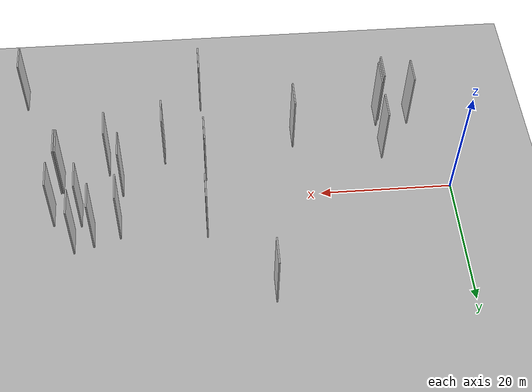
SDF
<?xml version="1.0" encoding="utf-8"?>

<sdf version="1.6">

   <world name="default">

      <gui fullscreen="0">

         <camera name="user_camera">

            <pose>-15 0 4.57585 0 0 0</pose>

            <view_controller>orbit</view_controller>

         </camera>

      </gui>

      <scene>

         <sky>

           <clouds>

             <speed>12</speed>

           </clouds>

         </sky>

         <ambient>0.4 0.4 0.4 1</ambient>

         <background>0.7 0.7 0.7 1</background>

         <shadows>1</shadows>

      </scene>

      <gravity>0 0 -9.8066</gravity>

      <magnetic_field>6e-06 2.3e-05 -4.2e-05</magnetic_field>

      <physics default="0" name="default_physics" type="ode">

         <ode>

            <solver>

               <type>quick</type>

               <iters>10</iters>

               <sor>1.0</sor>

               <use_dynamic_moi_rescaling>0</use_dynamic_moi_rescaling>

            </solver>

            <constraints>

               <cfm>0</cfm>

               <erp>0.2</erp>

               <contact_max_correcting_vel>100</contact_max_correcting_vel>

               <contact_surface_layer>0.001</contact_surface_layer>

            </constraints>

         </ode>

         <max_step_size>0.004</max_step_size>

         <real_time_factor>1</real_time_factor>

         <real_time_update_rate>250</real_time_update_rate>

      </physics>

      <light name="sun" type="directional">

         <cast_shadows>1</cast_shadows>

         <pose>0 0 10 0 0 0</pose>

         <diffuse>0.8 0.8 0.8 1</diffuse>

         <specular>0.2 0.2 0.2 1</specular>

         <attenuation>

            <range>1000</range>

            <constant>0.9</constant>

            <linear>0.01</linear>

            <quadratic>0.001</quadratic>

         </attenuation>

         <direction>-0.5 0.1 -0.9</direction>

      </light>

      <include>

         <name>ground_plane_1</name>

         <uri>model://HANNAS_ground_plane</uri>

         <pose>0 0 0  0 0 0</pose>

      </include>

      <include>

         <name>ground_plane_2</name>

         <uri>model://HANNAS_ground_plane</uri>

         <pose>100 0 0  0 0 0</pose>

      </include>

      <model name="HANNAS_wall_1">

         <static>1</static>

         <pose frame="">56.7683 9.6143 5.0 0.000000 0.000000 1.570796</pose>

         <link name="link">

            <pose frame="">0 0 5.00 0 0 0</pose>

            <collision name="collision">

               <geometry>

                  <box>

                     <size>4.00 0.2 10.00</size>

                  </box>

               </geometry>

               <max_contacts>10</max_contacts>

               <surface>

                  <contact>

                     <ode/>

                  </contact>

                  <bounce/>

                  <friction>

                     <torsional>

                        <ode/>

                     </torsional>

                     <ode/>

                  </friction>

               </surface>

            </collision>

            <visual name="visual">

               <cast_shadows>0</cast_shadows>

               <geometry>

                  <box>

                     <size>4.00 0.2 10.00</size>

                  </box>

               </geometry>

               <material>

                  <script>

                     <uri>model://HANNAS_wall/materials/scripts</uri>

                     <uri>model://HANNAS_wall/materials/textures</uri>

                     <name>vrc/HANNAS_wall</name>

                  </script>

               </material>

            </visual>

            <self_collide>0</self_collide>

            <enable_wind>0</enable_wind>

            <kinematic>0</kinematic>

         </link>

      </model>

      <model name="HANNAS_wall_2">

         <static>1</static>

         <pose frame="">28.8676 19.4419 5.0 0.000000 0.000000 1.570796</pose>

         <link name="link">

            <pose frame="">0 0 5.00 0 0 0</pose>

            <collision name="collision">

               <geometry>

                  <box>

                     <size>4.00 0.2 10.00</size>

                  </box>

               </geometry>

               <max_contacts>10</max_contacts>

               <surface>

                  <contact>

                     <ode/>

                  </contact>

                  <bounce/>

                  <friction>

                     <torsional>

                        <ode/>

                     </torsional>

                     <ode/>

                  </friction>

               </surface>

            </collision>

            <visual name="visual">

               <cast_shadows>0</cast_shadows>

               <geometry>

                  <box>

                     <size>4.00 0.2 10.00</size>

                  </box>

               </geometry>

               <material>

                  <script>

                     <uri>model://HANNAS_wall/materials/scripts</uri>

                     <uri>model://HANNAS_wall/materials/textures</uri>

                     <name>vrc/HANNAS_wall</name>

                  </script>

               </material>

            </visual>

            <self_collide>0</self_collide>

            <enable_wind>0</enable_wind>

            <kinematic>0</kinematic>

         </link>

      </model>

      <model name="HANNAS_wall_3">

         <static>1</static>

         <pose frame="">43.5349 -5.5277 5.0 0.000000 0.000000 1.570796</pose>

         <link name="link">

            <pose frame="">0 0 5.00 0 0 0</pose>

            <collision name="collision">

               <geometry>

                  <box>

                     <size>4.00 0.2 10.00</size>

                  </box>

               </geometry>

               <max_contacts>10</max_contacts>

               <surface>

                  <contact>

                     <ode/>

                  </contact>

                  <bounce/>

                  <friction>

                     <torsional>

                        <ode/>

                     </torsional>

                     <ode/>

                  </friction>

               </surface>

            </collision>

            <visual name="visual">

               <cast_shadows>0</cast_shadows>

               <geometry>

                  <box>

                     <size>4.00 0.2 10.00</size>

                  </box>

               </geometry>

               <material>

                  <script>

                     <uri>model://HANNAS_wall/materials/scripts</uri>

                     <uri>model://HANNAS_wall/materials/textures</uri>

                     <name>vrc/HANNAS_wall</name>

                  </script>

               </material>

            </visual>

            <self_collide>0</self_collide>

            <enable_wind>0</enable_wind>

            <kinematic>0</kinematic>

         </link>

      </model>

      <model name="HANNAS_wall_4">

         <static>1</static>

         <pose frame="">53.9892 8.7683 5.0 0.000000 0.000000 1.570796</pose>

         <link name="link">

            <pose frame="">0 0 5.00 0 0 0</pose>

            <collision name="collision">

               <geometry>

                  <box>

                     <size>4.00 0.2 10.00</size>

                  </box>

               </geometry>

               <max_contacts>10</max_contacts>

               <surface>

                  <contact>

                     <ode/>

                  </contact>

                  <bounce/>

                  <friction>

                     <torsional>

                        <ode/>

                     </torsional>

                     <ode/>

                  </friction>

               </surface>

            </collision>

            <visual name="visual">

               <cast_shadows>0</cast_shadows>

               <geometry>

                  <box>

                     <size>4.00 0.2 10.00</size>

                  </box>

               </geometry>

               <material>

                  <script>

                     <uri>model://HANNAS_wall/materials/scripts</uri>

                     <uri>model://HANNAS_wall/materials/textures</uri>

                     <name>vrc/HANNAS_wall</name>

                  </script>

               </material>

            </visual>

            <self_collide>0</self_collide>

            <enable_wind>0</enable_wind>

            <kinematic>0</kinematic>

         </link>

      </model>

      <model name="HANNAS_wall_5">

         <static>1</static>

         <pose frame="">37.7134 -15.6354 5.0 0.000000 0.000000 1.570796</pose>

         <link name="link">

            <pose frame="">0 0 5.00 0 0 0</pose>

            <collision name="collision">

               <geometry>

                  <box>

                     <size>4.00 0.2 10.00</size>

                  </box>

               </geometry>

               <max_contacts>10</max_contacts>

               <surface>

                  <contact>

                     <ode/>

                  </contact>

                  <bounce/>

                  <friction>

                     <torsional>

                        <ode/>

                     </torsional>

                     <ode/>

                  </friction>

               </surface>

            </collision>

            <visual name="visual">

               <cast_shadows>0</cast_shadows>

               <geometry>

                  <box>

                     <size>4.00 0.2 10.00</size>

                  </box>

               </geometry>

               <material>

                  <script>

                     <uri>model://HANNAS_wall/materials/scripts</uri>

                     <uri>model://HANNAS_wall/materials/textures</uri>

                     <name>vrc/HANNAS_wall</name>

                  </script>

               </material>

            </visual>

            <self_collide>0</self_collide>

            <enable_wind>0</enable_wind>

            <kinematic>0</kinematic>

         </link>

      </model>

      <model name="HANNAS_wall_6">

         <static>1</static>

         <pose frame="">10.2694 -11.8890 5.0 0.000000 0.000000 1.570796</pose>

         <link name="link">

            <pose frame="">0 0 5.00 0 0 0</pose>

            <collision name="collision">

               <geometry>

                  <box>

                     <size>4.00 0.2 10.00</size>

                  </box>

               </geometry>

               <max_contacts>10</max_contacts>

               <surface>

                  <contact>

                     <ode/>

                  </contact>

                  <bounce/>

                  <friction>

                     <torsional>

                        <ode/>

                     </torsional>

                     <ode/>

                  </friction>

               </surface>

            </collision>

            <visual name="visual">

               <cast_shadows>0</cast_shadows>

               <geometry>

                  <box>

                     <size>4.00 0.2 10.00</size>

                  </box>

               </geometry>

               <material>

                  <script>

                     <uri>model://HANNAS_wall/materials/scripts</uri>

                     <uri>model://HANNAS_wall/materials/textures</uri>

                     <name>vrc/HANNAS_wall</name>

                  </script>

               </material>

            </visual>

            <self_collide>0</self_collide>

            <enable_wind>0</enable_wind>

            <kinematic>0</kinematic>

         </link>

      </model>

      <model name="HANNAS_wall_7">

         <static>1</static>

         <pose frame="">50.2299 7.5200 5.0 0.000000 0.000000 1.570796</pose>

         <link name="link">

            <pose frame="">0 0 5.00 0 0 0</pose>

            <collision name="collision">

               <geometry>

                  <box>

                     <size>4.00 0.2 10.00</size>

                  </box>

               </geometry>

               <max_contacts>10</max_contacts>

               <surface>

                  <contact>

                     <ode/>

                  </contact>

                  <bounce/>

                  <friction>

                     <torsional>

                        <ode/>

                     </torsional>

                     <ode/>

                  </friction>

               </surface>

            </collision>

            <visual name="visual">

               <cast_shadows>0</cast_shadows>

               <geometry>

                  <box>

                     <size>4.00 0.2 10.00</size>

                  </box>

               </geometry>

               <material>

                  <script>

                     <uri>model://HANNAS_wall/materials/scripts</uri>

                     <uri>model://HANNAS_wall/materials/textures</uri>

                     <name>vrc/HANNAS_wall</name>

                  </script>

               </material>

            </visual>

            <self_collide>0</self_collide>

            <enable_wind>0</enable_wind>

            <kinematic>0</kinematic>

         </link>

      </model>

      <model name="HANNAS_wall_8">

         <static>1</static>

         <pose frame="">59.7958 4.7021 5.0 0.000000 0.000000 1.570796</pose>

         <link name="link">

            <pose frame="">0 0 5.00 0 0 0</pose>

            <collision name="collision">

               <geometry>

                  <box>

                     <size>4.00 0.2 10.00</size>

                  </box>

               </geometry>

               <max_contacts>10</max_contacts>

               <surface>

                  <contact>

                     <ode/>

                  </contact>

                  <bounce/>

                  <friction>

                     <torsional>

                        <ode/>

                     </torsional>

                     <ode/>

                  </friction>

               </surface>

            </collision>

            <visual name="visual">

               <cast_shadows>0</cast_shadows>

               <geometry>

                  <box>

                     <size>4.00 0.2 10.00</size>

                  </box>

               </geometry>

               <material>

                  <script>

                     <uri>model://HANNAS_wall/materials/scripts</uri>

                     <uri>model://HANNAS_wall/materials/textures</uri>

                     <name>vrc/HANNAS_wall</name>

                  </script>

               </material>

            </visual>

            <self_collide>0</self_collide>

            <enable_wind>0</enable_wind>

            <kinematic>0</kinematic>

         </link>

      </model>

      <model name="HANNAS_wall_9">

         <static>1</static>

         <pose frame="">55.8156 5.0933 5.0 0.000000 0.000000 1.570796</pose>

         <link name="link">

            <pose frame="">0 0 5.00 0 0 0</pose>

            <collision name="collision">

               <geometry>

                  <box>

                     <size>4.00 0.2 10.00</size>

                  </box>

               </geometry>

               <max_contacts>10</max_contacts>

               <surface>

                  <contact>

                     <ode/>

                  </contact>

                  <bounce/>

                  <friction>

                     <torsional>

                        <ode/>

                     </torsional>

                     <ode/>

                  </friction>

               </surface>

            </collision>

            <visual name="visual">

               <cast_shadows>0</cast_shadows>

               <geometry>

                  <box>

                     <size>4.00 0.2 10.00</size>

                  </box>

               </geometry>

               <material>

                  <script>

                     <uri>model://HANNAS_wall/materials/scripts</uri>

                     <uri>model://HANNAS_wall/materials/textures</uri>

                     <name>vrc/HANNAS_wall</name>

                  </script>

               </material>

            </visual>

            <self_collide>0</self_collide>

            <enable_wind>0</enable_wind>

            <kinematic>0</kinematic>

         </link>

      </model>

      <model name="HANNAS_wall_10">

         <static>1</static>

         <pose frame="">10.7528 -10.7816 5.0 0.000000 0.000000 1.570796</pose>

         <link name="link">

            <pose frame="">0 0 5.00 0 0 0</pose>

            <collision name="collision">

               <geometry>

                  <box>

                     <size>4.00 0.2 10.00</size>

                  </box>

               </geometry>

               <max_contacts>10</max_contacts>

               <surface>

                  <contact>

                     <ode/>

                  </contact>

                  <bounce/>

                  <friction>

                     <torsional>

                        <ode/>

                     </torsional>

                     <ode/>

                  </friction>

               </surface>

            </collision>

            <visual name="visual">

               <cast_shadows>0</cast_shadows>

               <geometry>

                  <box>

                     <size>4.00 0.2 10.00</size>

                  </box>

               </geometry>

               <material>

                  <script>

                     <uri>model://HANNAS_wall/materials/scripts</uri>

                     <uri>model://HANNAS_wall/materials/textures</uri>

                     <name>vrc/HANNAS_wall</name>

                  </script>

               </material>

            </visual>

            <self_collide>0</self_collide>

            <enable_wind>0</enable_wind>

            <kinematic>0</kinematic>

         </link>

      </model>

      <model name="HANNAS_wall_11">

         <static>1</static>

         <pose frame="">24.0378 -7.4745 5.0 0.000000 0.000000 1.570796</pose>

         <link name="link">

            <pose frame="">0 0 5.00 0 0 0</pose>

            <collision name="collision">

               <geometry>

                  <box>

                     <size>4.00 0.2 10.00</size>

                  </box>

               </geometry>

               <max_contacts>10</max_contacts>

               <surface>

                  <contact>

                     <ode/>

                  </contact>

                  <bounce/>

                  <friction>

                     <torsional>

                        <ode/>

                     </torsional>

                     <ode/>

                  </friction>

               </surface>

            </collision>

            <visual name="visual">

               <cast_shadows>0</cast_shadows>

               <geometry>

                  <box>

                     <size>4.00 0.2 10.00</size>

                  </box>

               </geometry>

               <material>

                  <script>

                     <uri>model://HANNAS_wall/materials/scripts</uri>

                     <uri>model://HANNAS_wall/materials/textures</uri>

                     <name>vrc/HANNAS_wall</name>

                  </script>

               </material>

            </visual>

            <self_collide>0</self_collide>

            <enable_wind>0</enable_wind>

            <kinematic>0</kinematic>

         </link>

      </model>

      <model name="HANNAS_wall_12">

         <static>1</static>

         <pose frame="">64.6763 -17.6705 5.0 0.000000 0.000000 1.570796</pose>

         <link name="link">

            <pose frame="">0 0 5.00 0 0 0</pose>

            <collision name="collision">

               <geometry>

                  <box>

                     <size>4.00 0.2 10.00</size>

                  </box>

               </geometry>

               <max_contacts>10</max_contacts>

               <surface>

                  <contact>

                     <ode/>

                  </contact>

                  <bounce/>

                  <friction>

                     <torsional>

                        <ode/>

                     </torsional>

                     <ode/>

                  </friction>

               </surface>

            </collision>

            <visual name="visual">

               <cast_shadows>0</cast_shadows>

               <geometry>

                  <box>

                     <size>4.00 0.2 10.00</size>

                  </box>

               </geometry>

               <material>

                  <script>

                     <uri>model://HANNAS_wall/materials/scripts</uri>

                     <uri>model://HANNAS_wall/materials/textures</uri>

                     <name>vrc/HANNAS_wall</name>

                  </script>

               </material>

            </visual>

            <self_collide>0</self_collide>

            <enable_wind>0</enable_wind>

            <kinematic>0</kinematic>

         </link>

      </model>

      <model name="HANNAS_wall_13">

         <static>1</static>

         <pose frame="">49.8615 0.0518 5.0 0.000000 0.000000 1.570796</pose>

         <link name="link">

            <pose frame="">0 0 5.00 0 0 0</pose>

            <collision name="collision">

               <geometry>

                  <box>

                     <size>4.00 0.2 10.00</size>

                  </box>

               </geometry>

               <max_contacts>10</max_contacts>

               <surface>

                  <contact>

                     <ode/>

                  </contact>

                  <bounce/>

                  <friction>

                     <torsional>

                        <ode/>

                     </torsional>

                     <ode/>

                  </friction>

               </surface>

            </collision>

            <visual name="visual">

               <cast_shadows>0</cast_shadows>

               <geometry>

                  <box>

                     <size>4.00 0.2 10.00</size>

                  </box>

               </geometry>

               <material>

                  <script>

                     <uri>model://HANNAS_wall/materials/scripts</uri>

                     <uri>model://HANNAS_wall/materials/textures</uri>

                     <name>vrc/HANNAS_wall</name>

                  </script>

               </material>

            </visual>

            <self_collide>0</self_collide>

            <enable_wind>0</enable_wind>

            <kinematic>0</kinematic>

         </link>

      </model>

      <model name="HANNAS_wall_14">

         <static>1</static>

         <pose frame="">37.5154 -1.9658 5.0 0.000000 0.000000 1.570796</pose>

         <link name="link">

            <pose frame="">0 0 5.00 0 0 0</pose>

            <collision name="collision">

               <geometry>

                  <box>

                     <size>4.00 0.2 10.00</size>

                  </box>

               </geometry>

               <max_contacts>10</max_contacts>

               <surface>

                  <contact>

                     <ode/>

                  </contact>

                  <bounce/>

                  <friction>

                     <torsional>

                        <ode/>

                     </torsional>

                     <ode/>

                  </friction>

               </surface>

            </collision>

            <visual name="visual">

               <cast_shadows>0</cast_shadows>

               <geometry>

                  <box>

                     <size>4.00 0.2 10.00</size>

                  </box>

               </geometry>

               <material>

                  <script>

                     <uri>model://HANNAS_wall/materials/scripts</uri>

                     <uri>model://HANNAS_wall/materials/textures</uri>

                     <name>vrc/HANNAS_wall</name>

                  </script>

               </material>

            </visual>

            <self_collide>0</self_collide>

            <enable_wind>0</enable_wind>

            <kinematic>0</kinematic>

         </link>

      </model>

      <model name="HANNAS_wall_15">

         <static>1</static>

         <pose frame="">58.8973 -1.0783 5.0 0.000000 0.000000 1.570796</pose>

         <link name="link">

            <pose frame="">0 0 5.00 0 0 0</pose>

            <collision name="collision">

               <geometry>

                  <box>

                     <size>4.00 0.2 10.00</size>

                  </box>

               </geometry>

               <max_contacts>10</max_contacts>

               <surface>

                  <contact>

                     <ode/>

                  </contact>

                  <bounce/>

                  <friction>

                     <torsional>

                        <ode/>

                     </torsional>

                     <ode/>

                  </friction>

               </surface>

            </collision>

            <visual name="visual">

               <cast_shadows>0</cast_shadows>

               <geometry>

                  <box>

                     <size>4.00 0.2 10.00</size>

                  </box>

               </geometry>

               <material>

                  <script>

                     <uri>model://HANNAS_wall/materials/scripts</uri>

                     <uri>model://HANNAS_wall/materials/textures</uri>

                     <name>vrc/HANNAS_wall</name>

                  </script>

               </material>

            </visual>

            <self_collide>0</self_collide>

            <enable_wind>0</enable_wind>

            <kinematic>0</kinematic>

         </link>

      </model>

      <model name="HANNAS_wall_16">

         <static>1</static>

         <pose frame="">51.8311 -3.8895 5.0 0.000000 0.000000 1.570796</pose>

         <link name="link">

            <pose frame="">0 0 5.00 0 0 0</pose>

            <collision name="collision">

               <geometry>

                  <box>

                     <size>4.00 0.2 10.00</size>

                  </box>

               </geometry>

               <max_contacts>10</max_contacts>

               <surface>

                  <contact>

                     <ode/>

                  </contact>

                  <bounce/>

                  <friction>

                     <torsional>

                        <ode/>

                     </torsional>

                     <ode/>

                  </friction>

               </surface>

            </collision>

            <visual name="visual">

               <cast_shadows>0</cast_shadows>

               <geometry>

                  <box>

                     <size>4.00 0.2 10.00</size>

                  </box>

               </geometry>

               <material>

                  <script>

                     <uri>model://HANNAS_wall/materials/scripts</uri>

                     <uri>model://HANNAS_wall/materials/textures</uri>

                     <name>vrc/HANNAS_wall</name>

                  </script>

               </material>

            </visual>

            <self_collide>0</self_collide>

            <enable_wind>0</enable_wind>

            <kinematic>0</kinematic>

         </link>

      </model>

      <model name="HANNAS_wall_17">

         <static>1</static>

         <pose frame="">10.7741 -4.3902 5.0 0.000000 0.000000 1.570796</pose>

         <link name="link">

            <pose frame="">0 0 5.00 0 0 0</pose>

            <collision name="collision">

               <geometry>

                  <box>

                     <size>4.00 0.2 10.00</size>

                  </box>

               </geometry>

               <max_contacts>10</max_contacts>

               <surface>

                  <contact>

                     <ode/>

                  </contact>

                  <bounce/>

                  <friction>

                     <torsional>

                        <ode/>

                     </torsional>

                     <ode/>

                  </friction>

               </surface>

            </collision>

            <visual name="visual">

               <cast_shadows>0</cast_shadows>

               <geometry>

                  <box>

                     <size>4.00 0.2 10.00</size>

                  </box>

               </geometry>

               <material>

                  <script>

                     <uri>model://HANNAS_wall/materials/scripts</uri>

                     <uri>model://HANNAS_wall/materials/textures</uri>

                     <name>vrc/HANNAS_wall</name>

                  </script>

               </material>

            </visual>

            <self_collide>0</self_collide>

            <enable_wind>0</enable_wind>

            <kinematic>0</kinematic>

         </link>

      </model>

      <model name="HANNAS_wall_18">

         <static>1</static>

         <pose frame="">37.7784 8.1866 5.0 0.000000 0.000000 1.570796</pose>

         <link name="link">

            <pose frame="">0 0 5.00 0 0 0</pose>

            <collision name="collision">

               <geometry>

                  <box>

                     <size>4.00 0.2 10.00</size>

                  </box>

               </geometry>

               <max_contacts>10</max_contacts>

               <surface>

                  <contact>

                     <ode/>

                  </contact>

                  <bounce/>

                  <friction>

                     <torsional>

                        <ode/>

                     </torsional>

                     <ode/>

                  </friction>

               </surface>

            </collision>

            <visual name="visual">

               <cast_shadows>0</cast_shadows>

               <geometry>

                  <box>

                     <size>4.00 0.2 10.00</size>

                  </box>

               </geometry>

               <material>

                  <script>

                     <uri>model://HANNAS_wall/materials/scripts</uri>

                     <uri>model://HANNAS_wall/materials/textures</uri>

                     <name>vrc/HANNAS_wall</name>

                  </script>

               </material>

            </visual>

            <self_collide>0</self_collide>

            <enable_wind>0</enable_wind>

            <kinematic>0</kinematic>

         </link>

      </model>

      <model name="HANNAS_wall_19">

         <static>1</static>

         <pose frame="">5.9365 -10.8796 5.0 0.000000 0.000000 1.570796</pose>

         <link name="link">

            <pose frame="">0 0 5.00 0 0 0</pose>

            <collision name="collision">

               <geometry>

                  <box>

                     <size>4.00 0.2 10.00</size>

                  </box>

               </geometry>

               <max_contacts>10</max_contacts>

               <surface>

                  <contact>

                     <ode/>

                  </contact>

                  <bounce/>

                  <friction>

                     <torsional>

                        <ode/>

                     </torsional>

                     <ode/>

                  </friction>

               </surface>

            </collision>

            <visual name="visual">

               <cast_shadows>0</cast_shadows>

               <geometry>

                  <box>

                     <size>4.00 0.2 10.00</size>

                  </box>

               </geometry>

               <material>

                  <script>

                     <uri>model://HANNAS_wall/materials/scripts</uri>

                     <uri>model://HANNAS_wall/materials/textures</uri>

                     <name>vrc/HANNAS_wall</name>

                  </script>

               </material>

            </visual>

            <self_collide>0</self_collide>

            <enable_wind>0</enable_wind>

            <kinematic>0</kinematic>

         </link>

      </model>

      <model name="HANNAS_wall_20">

         <static>1</static>

         <pose frame="">58.5920 -1.0789 5.0 0.000000 0.000000 1.570796</pose>

         <link name="link">

            <pose frame="">0 0 5.00 0 0 0</pose>

            <collision name="collision">

               <geometry>

                  <box>

                     <size>4.00 0.2 10.00</size>

                  </box>

               </geometry>

               <max_contacts>10</max_contacts>

               <surface>

                  <contact>

                     <ode/>

                  </contact>

                  <bounce/>

                  <friction>

                     <torsional>

                        <ode/>

                     </torsional>

                     <ode/>

                  </friction>

               </surface>

            </collision>

            <visual name="visual">

               <cast_shadows>0</cast_shadows>

               <geometry>

                  <box>

                     <size>4.00 0.2 10.00</size>

                  </box>

               </geometry>

               <material>

                  <script>

                     <uri>model://HANNAS_wall/materials/scripts</uri>

                     <uri>model://HANNAS_wall/materials/textures</uri>

                     <name>vrc/HANNAS_wall</name>

                  </script>

               </material>

            </visual>

            <self_collide>0</self_collide>

            <enable_wind>0</enable_wind>

            <kinematic>0</kinematic>

         </link>

      </model>

   </world>

</sdf>

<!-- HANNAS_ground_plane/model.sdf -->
<sdf version="1.4">
<model name="HANNAS_ground_plane">
  <static>true</static>
    <link name="link">
      <collision name="collision">
        <geometry>
          <plane>
            <normal>0 0 1</normal>
            <size>1000 1000</size>
          </plane>
        </geometry>
        <surface>
          <friction>
            <ode>
              <mu>100</mu>
              <mu2>50</mu2>
            </ode>
          </friction>
        </surface>
      </collision>
      <visual name="visual">
        <cast_shadows>false</cast_shadows>
        <geometry>
          <plane>
            <normal>0 0 1</normal>
            <size>1000 1000</size>
          </plane>
        </geometry>
        <material>
          <script>
            <uri>model://HANNAS_ground_plane/materials/scripts/HANNAS_ground_plane.material</uri>
	    <uri>model://HANNAS_ground_plane/materials/textures</uri>
            <name>HANNASGroundPlane/Image</name>
          </script>
        </material>
      </visual>
    </link>
  </model>
</sdf>
